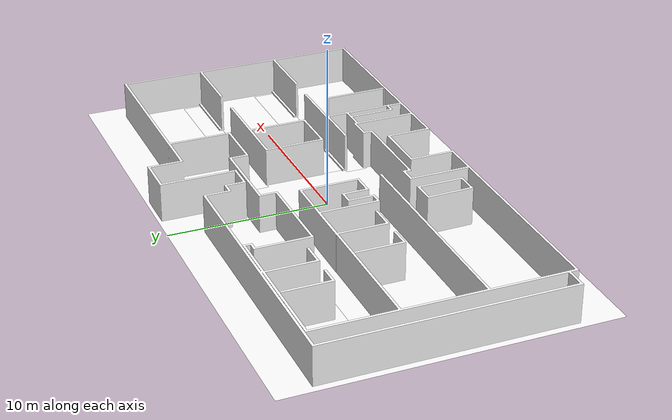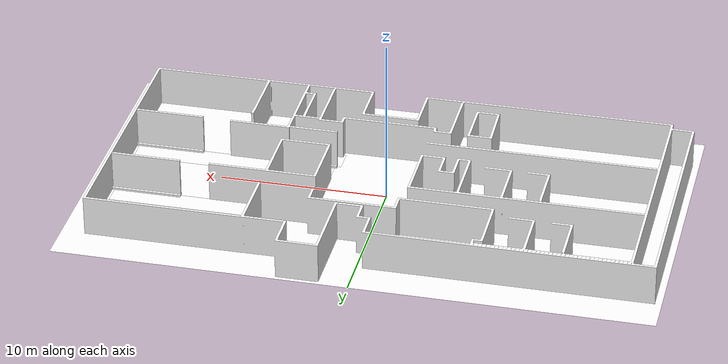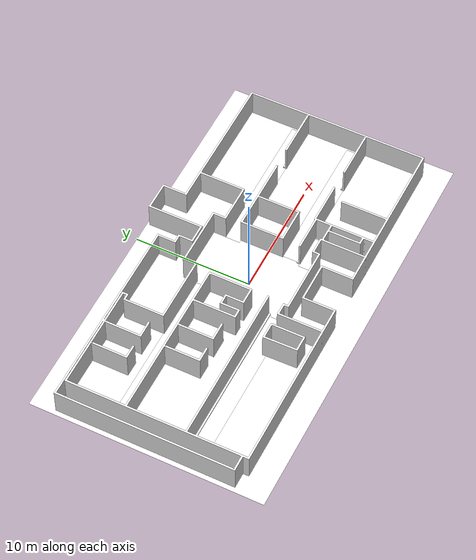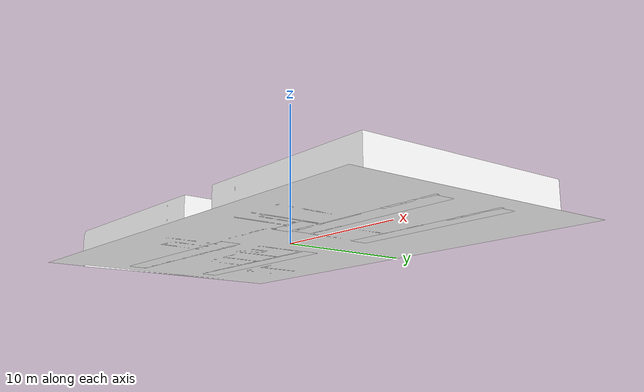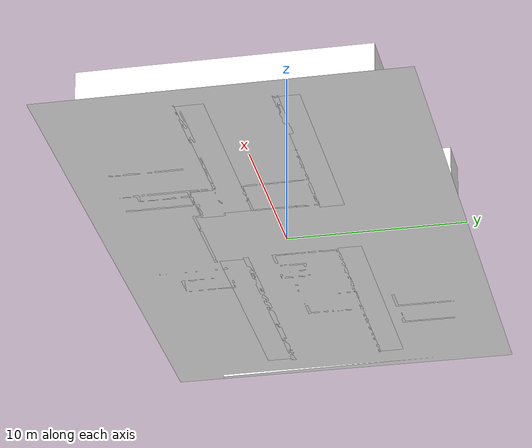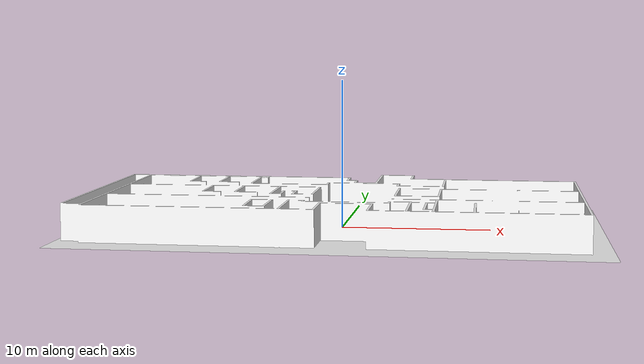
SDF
<?xml version="1.0" ?>
<sdf version="1.6">
  <model name='office'>
    <static>1</static>
    <link name='walls'>
      <collision name='collision'>
        <geometry>
          <mesh>
            <scale>1 1 1</scale>
            <uri>meshes/walls.dae</uri>
          </mesh>
        </geometry>
        <surface>
          <friction>
            <ode/>
          </friction>
          <bounce/>
          <contact/>
        </surface>
      </collision>
      <visual name='visual'>
        <geometry>
          <mesh>
            <scale>1 1 1</scale>
            <uri>meshes/walls.dae</uri>
          </mesh>
        </geometry>
        <material>
          <diffuse>1 1 1 1</diffuse>
          <specular>0 0 0 0</specular>
          <pbr>
            <metal>
              <albedo_map>materials/textures/walls/macro_flour_diff_4k.jpg</albedo_map>
              <normal_map>materials/textures/walls/macro_flour_nor_gl_4k.exr</normal_map>
              <roughness_map>materials/textures/walls/macro_flour_rough_4k.exr</roughness_map>
              <metalness>0.</metalness>
            </metal>
          </pbr>
        </material>
      </visual>
    </link>
    <link name='wood_floor'>
      <visual name='visual'>
        <geometry>
          <mesh>
            <scale>1 1 1</scale>
            <uri>meshes/wood.dae</uri>
          </mesh>
        </geometry>
        <material>
          <diffuse>1 1 1 1</diffuse>
          <specular>1 1 1 1</specular>
          <pbr>
            <metal>
              <albedo_map>materials/textures/wood/wood_floor_diff_4k.jpg</albedo_map>
              <normal_map>materials/textures/wood/wood_floor_nor_gl_4k.exr</normal_map>
              <roughness_map>materials/textures/wood/wood_floor_rough_4k.exr</roughness_map>
              <metalness>0.</metalness>
            </metal>
          </pbr>
        </material>
      </visual>
    </link>
    <link name='tiles'>
      <visual name='visual'>
        <geometry>
          <mesh>
            <scale>1 1 1</scale>
            <uri>meshes/tiles.dae</uri>
          </mesh>
        </geometry>
        <material>
          <diffuse>1 1 1 1</diffuse>
          <specular>1 1 1 1</specular>
          <pbr>
            <metal>
              <albedo_map>materials/textures/tiles/Tiles054_1K-JPG_Color.jpg</albedo_map>
              <normal_map>materials/textures/tiles/Tiles054_1K-JPG_NormalDX.jpg</normal_map>
              <roughness_map>materials/textures/tiles/Tiles054_1K-JPG_Roughness.jpg</roughness_map>
              <metalness>0.</metalness>
            </metal>
          </pbr>
        </material>
      </visual>
    </link>

    <pose>0 0 0 0 0 0</pose>
  </model>
</sdf>
